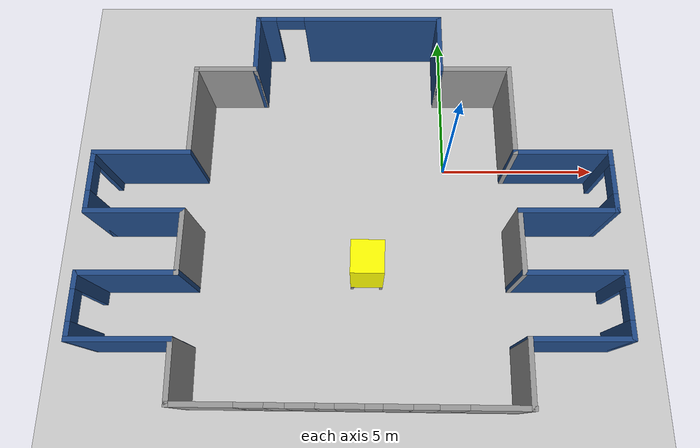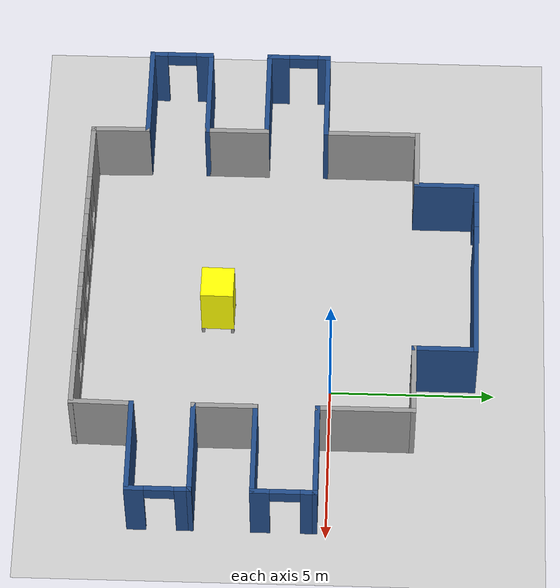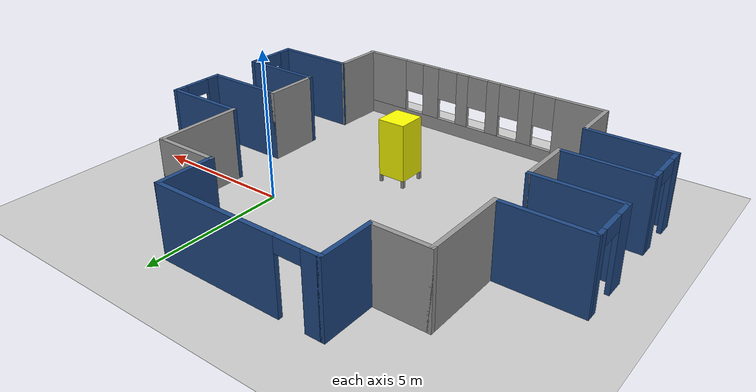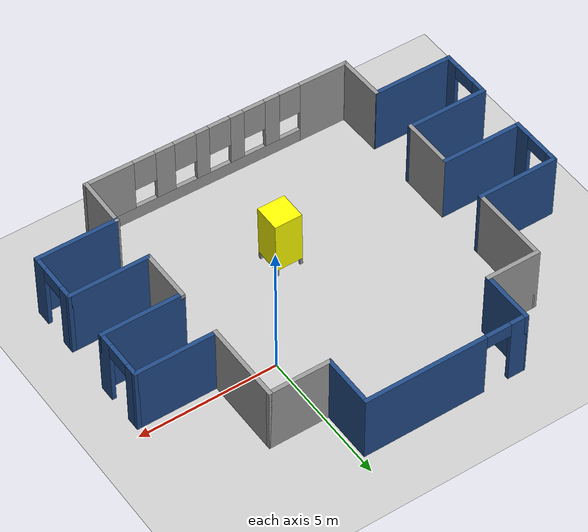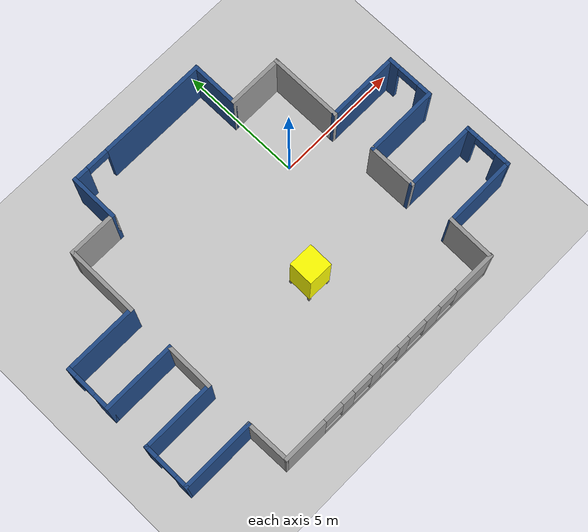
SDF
<sdf version="1.6">
 <world name="default">
  <model name="ground_plane">
   <static>1</static>
   <link name="link">
    <collision name="collision">
     <geometry><plane><normal>0 0 1</normal><size>100 100</size></plane></geometry>
     <surface>
      <contact><collide_bitmask>65535</collide_bitmask></contact>
      <friction><ode><mu>100</mu><mu2>50</mu2></ode></friction>
     </surface>
    </collision>
    <visual name="visual">
     <cast_shadows>0</cast_shadows>
     <geometry><plane><normal>0 0 1</normal><size>100 100</size></plane></geometry>
     <material>
      <script><uri>file://media/materials/scripts/gazebo.material</uri><name>Gazebo/Grey</name></script>
     </material>
    </visual>
   </link>
  </model>
  <model name="AmazonRoboticsFloor">
   <pose>-2.98765 -1.66162 0 0 -0 0</pose>
   <link name="Wall_1">
    <collision name="Wall_1_Collision">
     <geometry><box><size>3 0.15 2.5</size></box></geometry>
     <pose>0 0 1.25 0 -0 0</pose>
    </collision>
    <visual name="Wall_1_Visual">
     <pose>0 0 1.25 0 -0 0</pose>
     <geometry><box><size>3 0.15 2.5</size></box></geometry>
     <material>
      <script><uri>file://media/materials/scripts/gazebo.material</uri><name>Gazebo/Grey</name></script>
      <ambient>1 1 1 1</ambient>
     </material>
     <meta><layer>0</layer></meta>
    </visual>
    <pose>-4.92496 2.75442 0 0 -0 -1.5708</pose>
   </link>
   <link name="Wall_10">
    <pose>0.03254 -5.97119 0 0 -0 -0.011673</pose>
    <visual name="Wall_10_Visual_0">
     <pose>-4.02993 0 1.25 0 -0 0</pose>
     <geometry><box><size>1.8463 0.15 2.5</size></box></geometry>
     <material>
      <script><uri>file://media/materials/scripts/gazebo.material</uri><name>Gazebo/Grey</name></script>
      <ambient>1 1 1 1</ambient>
     </material>
     <meta><layer>0</layer></meta>
    </visual>
    <collision name="Wall_10_Collision_0">
     <geometry><box><size>1.8463 0.15 2.5</size></box></geometry>
     <pose>-4.02993 0 1.25 0 -0 0</pose>
    </collision>
    <visual name="Wall_10_Visual_1">
     <pose>0.923151 0 0.25 0 -0 0</pose>
     <geometry><box><size>8.05987 0.15 0.5</size></box></geometry>
     <material>
      <script><uri>file://media/materials/scripts/gazebo.material</uri><name>Gazebo/Grey</name></script>
      <ambient>1 1 1 1</ambient>
     </material>
     <meta><layer>0</layer></meta>
    </visual>
    <collision name="Wall_10_Collision_1">
     <geometry><box><size>8.05987 0.15 0.5</size></box></geometry>
     <pose>0.923151 0 0.25 0 -0 0</pose>
    </collision>
    <visual name="Wall_10_Visual_2">
     <pose>-2.02774 0 1.5 0 -0 0</pose>
     <geometry><box><size>0.558079 0.15 2</size></box></geometry>
     <material>
      <script><uri>file://media/materials/scripts/gazebo.material</uri><name>Gazebo/Grey</name></script>
      <ambient>1 1 1 1</ambient>
     </material>
     <meta><layer>0</layer></meta>
    </visual>
    <collision name="Wall_10_Collision_2">
     <geometry><box><size>0.558079 0.15 2</size></box></geometry>
     <pose>-2.02774 0 1.5 0 -0 0</pose>
    </collision>
    <visual name="Wall_10_Visual_3">
     <pose>-0.689635 0 1.5 0 -0 0</pose>
     <geometry><box><size>0.518135 0.15 2</size></box></geometry>
     <material>
      <script><uri>file://media/materials/scripts/gazebo.material</uri><name>Gazebo/Grey</name></script>
      <ambient>1 1 1 1</ambient>
     </material>
     <meta><layer>0</layer></meta>
    </visual>
    <collision name="Wall_10_Collision_3">
     <geometry><box><size>0.518135 0.15 2</size></box></geometry>
     <pose>-0.689635 0 1.5 0 -0 0</pose>
    </collision>
    <visual name="Wall_10_Visual_4">
     <pose>0.616096 0 1.5 0 -0 0</pose>
     <geometry><box><size>0.493327 0.15 2</size></box></geometry>
     <material>
      <script><uri>file://media/materials/scripts/gazebo.material</uri><name>Gazebo/Grey</name></script>
      <ambient>1 1 1 1</ambient>
     </material>
     <meta><layer>0</layer></meta>
    </visual>
    <collision name="Wall_10_Collision_4">
     <geometry><box><size>0.493327 0.15 2</size></box></geometry>
     <pose>0.616096 0 1.5 0 -0 0</pose>
    </collision>
    <visual name="Wall_10_Visual_5">
     <pose>2.01412 0 1.5 0 -0 0</pose>
     <geometry><box><size>0.702718 0.15 2</size></box></geometry>
     <material>
      <script><uri>file://media/materials/scripts/gazebo.material</uri><name>Gazebo/Grey</name></script>
      <ambient>1 1 1 1</ambient>
     </material>
     <meta><layer>0</layer></meta>
    </visual>
    <collision name="Wall_10_Collision_5">
     <geometry><box><size>0.702718 0.15 2</size></box></geometry>
     <pose>2.01412 0 1.5 0 -0 0</pose>
    </collision>
    <visual name="Wall_10_Visual_6">
     <pose>4.05928 0 1.5 0 -0 0</pose>
     <geometry><box><size>1.78761 0.15 2</size></box></geometry>
     <material>
      <script><uri>file://media/materials/scripts/gazebo.material</uri><name>Gazebo/Grey</name></script>
      <ambient>1 1 1 1</ambient>
     </material>
     <meta><layer>0</layer></meta>
    </visual>
    <collision name="Wall_10_Collision_6">
     <geometry><box><size>1.78761 0.15 2</size></box></geometry>
     <pose>4.05928 0 1.5 0 -0 0</pose>
    </collision>
    <visual name="Wall_10_Visual_7">
     <pose>-2.70678 0 1.9 0 -0 0</pose>
     <geometry><box><size>0.8 0.15 1.2</size></box></geometry>
     <material>
      <script><uri>file://media/materials/scripts/gazebo.material</uri><name>Gazebo/Grey</name></script>
      <ambient>1 1 1 1</ambient>
     </material>
     <meta><layer>0</layer></meta>
    </visual>
    <collision name="Wall_10_Collision_7">
     <geometry><box><size>0.8 0.15 1.2</size></box></geometry>
     <pose>-2.70678 0 1.9 0 -0 0</pose>
    </collision>
    <visual name="Wall_10_Visual_8">
     <pose>-1.3487 0 1.9 0 -0 0</pose>
     <geometry><box><size>0.8 0.15 1.2</size></box></geometry>
     <material>
      <script><uri>file://media/materials/scripts/gazebo.material</uri><name>Gazebo/Grey</name></script>
      <ambient>1 1 1 1</ambient>
     </material>
     <meta><layer>0</layer></meta>
    </visual>
    <collision name="Wall_10_Collision_8">
     <geometry><box><size>0.8 0.15 1.2</size></box></geometry>
     <pose>-1.3487 0 1.9 0 -0 0</pose>
    </collision>
    <visual name="Wall_10_Visual_9">
     <pose>-0.030567 0 1.9 0 -0 0</pose>
     <geometry><box><size>0.8 0.15 1.2</size></box></geometry>
     <material>
      <script><uri>file://media/materials/scripts/gazebo.material</uri><name>Gazebo/Grey</name></script>
      <ambient>1 1 1 1</ambient>
     </material>
     <meta><layer>0</layer></meta>
    </visual>
    <collision name="Wall_10_Collision_9">
     <geometry><box><size>0.8 0.15 1.2</size></box></geometry>
     <pose>-0.030567 0 1.9 0 -0 0</pose>
    </collision>
    <visual name="Wall_10_Visual_10">
     <pose>1.26276 0 1.9 0 -0 0</pose>
     <geometry><box><size>0.8 0.15 1.2</size></box></geometry>
     <material>
      <script><uri>file://media/materials/scripts/gazebo.material</uri><name>Gazebo/Grey</name></script>
      <ambient>1 1 1 1</ambient>
     </material>
     <meta><layer>0</layer></meta>
    </visual>
    <collision name="Wall_10_Collision_10">
     <geometry><box><size>0.8 0.15 1.2</size></box></geometry>
     <pose>1.26276 0 1.9 0 -0 0</pose>
    </collision>
    <visual name="Wall_10_Visual_11">
     <pose>2.76548 0 1.9 0 -0 0</pose>
     <geometry><box><size>0.8 0.15 1.2</size></box></geometry>
     <material>
      <script><uri>file://media/materials/scripts/gazebo.material</uri><name>Gazebo/Grey</name></script>
      <ambient>1 1 1 1</ambient>
     </material>
     <meta><layer>0</layer></meta>
    </visual>
    <collision name="Wall_10_Collision_11">
     <geometry><box><size>0.8 0.15 1.2</size></box></geometry>
     <pose>2.76548 0 1.9 0 -0 0</pose>
    </collision>
   </link>
   <link name="Wall_12">
    <collision name="Wall_12_Collision">
     <geometry><box><size>3 0.15 2.5</size></box></geometry>
     <pose>0 0 1.25 0 -0 0</pose>
    </collision>
    <visual name="Wall_12_Visual">
     <pose>0 0 1.25 0 -0 0</pose>
     <geometry><box><size>3 0.15 2.5</size></box></geometry>
     <material>
      <script><uri>file://media/materials/scripts/gazebo.material</uri><name>Gazebo/Grey</name></script>
      <ambient>0.12549 0.290196 0.529412 1</ambient>
     </material>
     <meta><layer>0</layer></meta>
    </visual>
    <pose>6.35004 -4.22058 0 0 -0 0</pose>
   </link>
   <link name="Wall_13">
    <pose>7.77504 -3.29558 0 0 -0 1.5708</pose>
    <visual name="Wall_13_Visual_0">
     <pose>-0.706177 0 1.25 0 -0 0</pose>
     <geometry><box><size>0.587646 0.15 2.5</size></box></geometry>
     <material>
      <script><uri>file://media/materials/scripts/gazebo.material</uri><name>Gazebo/Grey</name></script>
      <ambient>0.12549 0.290196 0.529412 1</ambient>
     </material>
     <meta><layer>0</layer></meta>
    </visual>
    <collision name="Wall_13_Collision_0">
     <geometry><box><size>0.587646 0.15 2.5</size></box></geometry>
     <pose>-0.706177 0 1.25 0 -0 0</pose>
    </collision>
    <visual name="Wall_13_Visual_1">
     <pose>0.743823 0 1.25 0 -0 0</pose>
     <geometry><box><size>0.512354 0.15 2.5</size></box></geometry>
     <material>
      <script><uri>file://media/materials/scripts/gazebo.material</uri><name>Gazebo/Grey</name></script>
      <ambient>0.12549 0.290196 0.529412 1</ambient>
     </material>
     <meta><layer>0</layer></meta>
    </visual>
    <collision name="Wall_13_Collision_1">
     <geometry><box><size>0.512354 0.15 2.5</size></box></geometry>
     <pose>0.743823 0 1.25 0 -0 0</pose>
    </collision>
    <visual name="Wall_13_Visual_2">
     <pose>0.037646 0 2.25 0 -0 0</pose>
     <geometry><box><size>0.9 0.15 0.5</size></box></geometry>
     <material>
      <script><uri>file://media/materials/scripts/gazebo.material</uri><name>Gazebo/Grey</name></script>
      <ambient>0.12549 0.290196 0.529412 1</ambient>
     </material>
     <meta><layer>0</layer></meta>
    </visual>
    <collision name="Wall_13_Collision_2">
     <geometry><box><size>0.9 0.15 0.5</size></box></geometry>
     <pose>0.037646 0 2.25 0 -0 0</pose>
    </collision>
   </link>
   <link name="Wall_14">
    <collision name="Wall_14_Collision">
     <geometry><box><size>3 0.15 2.5</size></box></geometry>
     <pose>0 0 1.25 0 -0 0</pose>
    </collision>
    <visual name="Wall_14_Visual">
     <pose>0 0 1.25 0 -0 0</pose>
     <geometry><box><size>3 0.15 2.5</size></box></geometry>
     <material>
      <script><uri>file://media/materials/scripts/gazebo.material</uri><name>Gazebo/Grey</name></script>
      <ambient>0.12549 0.290196 0.529412 1</ambient>
     </material>
     <meta><layer>0</layer></meta>
    </visual>
    <pose>6.35004 -2.37058 0 0 -0 3.14159</pose>
   </link>
   <link name="Wall_15">
    <collision name="Wall_15_Collision">
     <geometry><box><size>2 0.15 2.5</size></box></geometry>
     <pose>0 0 1.25 0 -0 0</pose>
    </collision>
    <visual name="Wall_15_Visual">
     <pose>0 0 1.25 0 -0 0</pose>
     <geometry><box><size>2 0.15 2.5</size></box></geometry>
     <material>
      <script><uri>file://media/materials/scripts/gazebo.material</uri><name>Gazebo/Grey</name></script>
      <ambient>1 1 1 1</ambient>
     </material>
     <meta><layer>0</layer></meta>
    </visual>
    <pose>4.92504 -1.44558 0 0 -0 1.5708</pose>
   </link>
   <link name="Wall_17">
    <collision name="Wall_17_Collision">
     <geometry><box><size>3 0.15 2.5</size></box></geometry>
     <pose>0 0 1.25 0 -0 0</pose>
    </collision>
    <visual name="Wall_17_Visual">
     <pose>0 0 1.25 0 -0 0</pose>
     <geometry><box><size>3 0.15 2.5</size></box></geometry>
     <material>
      <script><uri>file://media/materials/scripts/gazebo.material</uri><name>Gazebo/Grey</name></script>
      <ambient>0.12549 0.290196 0.529412 1</ambient>
     </material>
     <meta><layer>0</layer></meta>
    </visual>
    <pose>6.35004 -0.52058 0 0 -0 0</pose>
   </link>
   <link name="Wall_18">
    <pose>7.77504 0.40442 0 0 -0 1.5708</pose>
    <visual name="Wall_18_Visual_0">
     <pose>-0.704677 0 1.25 0 -0 0</pose>
     <geometry><box><size>0.590647 0.15 2.5</size></box></geometry>
     <material>
      <script><uri>file://media/materials/scripts/gazebo.material</uri><name>Gazebo/Grey</name></script>
      <ambient>0.12549 0.290196 0.529412 1</ambient>
     </material>
     <meta><layer>0</layer></meta>
    </visual>
    <collision name="Wall_18_Collision_0">
     <geometry><box><size>0.590647 0.15 2.5</size></box></geometry>
     <pose>-0.704677 0 1.25 0 -0 0</pose>
    </collision>
    <visual name="Wall_18_Visual_1">
     <pose>0.745323 0 1.25 0 -0 0</pose>
     <geometry><box><size>0.509353 0.15 2.5</size></box></geometry>
     <material>
      <script><uri>file://media/materials/scripts/gazebo.material</uri><name>Gazebo/Grey</name></script>
      <ambient>0.12549 0.290196 0.529412 1</ambient>
     </material>
     <meta><layer>0</layer></meta>
    </visual>
    <collision name="Wall_18_Collision_1">
     <geometry><box><size>0.509353 0.15 2.5</size></box></geometry>
     <pose>0.745323 0 1.25 0 -0 0</pose>
    </collision>
    <visual name="Wall_18_Visual_2">
     <pose>0.040647 0 2.25 0 -0 0</pose>
     <geometry><box><size>0.9 0.15 0.5</size></box></geometry>
     <material>
      <script><uri>file://media/materials/scripts/gazebo.material</uri><name>Gazebo/Grey</name></script>
      <ambient>0.12549 0.290196 0.529412 1</ambient>
     </material>
     <meta><layer>0</layer></meta>
    </visual>
    <collision name="Wall_18_Collision_2">
     <geometry><box><size>0.9 0.15 0.5</size></box></geometry>
     <pose>0.040647 0 2.25 0 -0 0</pose>
    </collision>
   </link>
   <link name="Wall_19">
    <collision name="Wall_19_Collision">
     <geometry><box><size>3 0.15 2.5</size></box></geometry>
     <pose>0 0 1.25 0 -0 0</pose>
    </collision>
    <visual name="Wall_19_Visual">
     <pose>0 0 1.25 0 -0 0</pose>
     <geometry><box><size>3 0.15 2.5</size></box></geometry>
     <material>
      <script><uri>file://media/materials/scripts/gazebo.material</uri><name>Gazebo/Grey</name></script>
      <ambient>0.12549 0.290196 0.529412 1</ambient>
     </material>
     <meta><layer>0</layer></meta>
    </visual>
    <pose>6.35004 1.32942 0 0 -0 3.14159</pose>
   </link>
   <link name="Wall_2">
    <collision name="Wall_2_Collision">
     <geometry><box><size>3 0.15 2.5</size></box></geometry>
     <pose>0 0 1.25 0 -0 0</pose>
    </collision>
    <visual name="Wall_2_Visual">
     <pose>0 0 1.25 0 -0 0</pose>
     <geometry><box><size>3 0.15 2.5</size></box></geometry>
     <material>
      <script><uri>file://media/materials/scripts/gazebo.material</uri><name>Gazebo/Grey</name></script>
      <ambient>0.12549 0.290196 0.529412 1</ambient>
     </material>
     <meta><layer>0</layer></meta>
    </visual>
    <pose>-6.34996 1.32942 0 0 -0 3.14159</pose>
   </link>
   <link name="Wall_20">
    <collision name="Wall_20_Collision">
     <geometry><box><size>3 0.15 2.5</size></box></geometry>
     <pose>0 0 1.25 0 -0 0</pose>
    </collision>
    <visual name="Wall_20_Visual">
     <pose>0 0 1.25 0 -0 0</pose>
     <geometry><box><size>3 0.15 2.5</size></box></geometry>
     <material>
      <script><uri>file://media/materials/scripts/gazebo.material</uri><name>Gazebo/Grey</name></script>
      <ambient>1 1 1 1</ambient>
     </material>
     <meta><layer>0</layer></meta>
    </visual>
    <pose>4.92504 2.75442 0 0 -0 1.5708</pose>
   </link>
   <link name="Wall_22">
    <collision name="Wall_22_Collision">
     <geometry><box><size>2 0.15 2.5</size></box></geometry>
     <pose>0 0 1.25 0 -0 0</pose>
    </collision>
    <visual name="Wall_22_Visual">
     <pose>0 0 1.25 0 -0 0</pose>
     <geometry><box><size>2 0.15 2.5</size></box></geometry>
     <material>
      <script><uri>file://media/materials/scripts/gazebo.material</uri><name>Gazebo/Grey</name></script>
      <ambient>1 1 1 1</ambient>
     </material>
     <meta><layer>0</layer></meta>
    </visual>
    <pose>-3.99996 4.17942 0 0 -0 0</pose>
   </link>
   <link name="Wall_24">
    <collision name="Wall_24_Collision">
     <geometry><box><size>2 0.15 2.5</size></box></geometry>
     <pose>0 0 1.25 0 -0 0</pose>
    </collision>
    <visual name="Wall_24_Visual">
     <pose>0 0 1.25 0 -0 0</pose>
     <geometry><box><size>2 0.15 2.5</size></box></geometry>
     <material>
      <script><uri>file://media/materials/scripts/gazebo.material</uri><name>Gazebo/Grey</name></script>
      <ambient>0.12549 0.290196 0.529412 1</ambient>
     </material>
     <meta><layer>0</layer></meta>
    </visual>
    <pose>-3.07496 5.10442 0 0 -0 1.5708</pose>
   </link>
   <link name="Wall_25">
    <pose>-0.149958 6.02942 0 0 -0 0</pose>
    <visual name="Wall_25_Visual_0">
     <pose>-2.67362 0 1.25 0 -0 0</pose>
     <geometry><box><size>0.652756 0.15 2.5</size></box></geometry>
     <material>
      <script><uri>file://media/materials/scripts/gazebo.material</uri><name>Gazebo/Grey</name></script>
      <ambient>0.12549 0.290196 0.529412 1</ambient>
     </material>
     <meta><layer>0</layer></meta>
    </visual>
    <collision name="Wall_25_Collision_0">
     <geometry><box><size>0.652756 0.15 2.5</size></box></geometry>
     <pose>-2.67362 0 1.25 0 -0 0</pose>
    </collision>
    <visual name="Wall_25_Visual_1">
     <pose>0.776378 0 1.25 0 -0 0</pose>
     <geometry><box><size>4.44724 0.15 2.5</size></box></geometry>
     <material>
      <script><uri>file://media/materials/scripts/gazebo.material</uri><name>Gazebo/Grey</name></script>
      <ambient>0.12549 0.290196 0.529412 1</ambient>
     </material>
     <meta><layer>0</layer></meta>
    </visual>
    <collision name="Wall_25_Collision_1">
     <geometry><box><size>4.44724 0.15 2.5</size></box></geometry>
     <pose>0.776378 0 1.25 0 -0 0</pose>
    </collision>
    <visual name="Wall_25_Visual_2">
     <pose>-1.89724 0 2.25 0 -0 0</pose>
     <geometry><box><size>0.9 0.15 0.5</size></box></geometry>
     <material>
      <script><uri>file://media/materials/scripts/gazebo.material</uri><name>Gazebo/Grey</name></script>
      <ambient>0.12549 0.290196 0.529412 1</ambient>
     </material>
     <meta><layer>0</layer></meta>
    </visual>
    <collision name="Wall_25_Collision_2">
     <geometry><box><size>0.9 0.15 0.5</size></box></geometry>
     <pose>-1.89724 0 2.25 0 -0 0</pose>
    </collision>
   </link>
   <link name="Wall_29">
    <collision name="Wall_29_Collision">
     <geometry><box><size>2 0.15 2.5</size></box></geometry>
     <pose>0 0 1.25 0 -0 0</pose>
    </collision>
    <visual name="Wall_29_Visual">
     <pose>0 0 1.25 0 -0 0</pose>
     <geometry><box><size>2 0.15 2.5</size></box></geometry>
     <material>
      <script><uri>file://media/materials/scripts/gazebo.material</uri><name>Gazebo/Grey</name></script>
      <ambient>0.12549 0.290196 0.529412 1</ambient>
     </material>
     <meta><layer>0</layer></meta>
    </visual>
    <pose>2.77504 5.10442 0 0 -0 -1.5708</pose>
   </link>
   <link name="Wall_3">
    <pose>-7.77496 0.40442 0 0 -0 -1.5708</pose>
    <visual name="Wall_3_Visual_0">
     <pose>-0.798223 0 1.25 0 -0 0</pose>
     <geometry><box><size>0.403554 0.15 2.5</size></box></geometry>
     <material>
      <script><uri>file://media/materials/scripts/gazebo.material</uri><name>Gazebo/Grey</name></script>
      <ambient>0.12549 0.290196 0.529412 1</ambient>
     </material>
     <meta><layer>0</layer></meta>
    </visual>
    <collision name="Wall_3_Collision_0">
     <geometry><box><size>0.403554 0.15 2.5</size></box></geometry>
     <pose>-0.798223 0 1.25 0 -0 0</pose>
    </collision>
    <visual name="Wall_3_Visual_1">
     <pose>0.651777 0 1.25 0 -0 0</pose>
     <geometry><box><size>0.696446 0.15 2.5</size></box></geometry>
     <material>
      <script><uri>file://media/materials/scripts/gazebo.material</uri><name>Gazebo/Grey</name></script>
      <ambient>0.12549 0.290196 0.529412 1</ambient>
     </material>
     <meta><layer>0</layer></meta>
    </visual>
    <collision name="Wall_3_Collision_1">
     <geometry><box><size>0.696446 0.15 2.5</size></box></geometry>
     <pose>0.651777 0 1.25 0 -0 0</pose>
    </collision>
    <visual name="Wall_3_Visual_2">
     <pose>-0.146446 0 2.25 0 -0 0</pose>
     <geometry><box><size>0.9 0.15 0.5</size></box></geometry>
     <material>
      <script><uri>file://media/materials/scripts/gazebo.material</uri><name>Gazebo/Grey</name></script>
      <ambient>0.12549 0.290196 0.529412 1</ambient>
     </material>
     <meta><layer>0</layer></meta>
    </visual>
    <collision name="Wall_3_Collision_2">
     <geometry><box><size>0.9 0.15 0.5</size></box></geometry>
     <pose>-0.146446 0 2.25 0 -0 0</pose>
    </collision>
   </link>
   <link name="Wall_30">
    <collision name="Wall_30_Collision">
     <geometry><box><size>2.3 0.15 2.5</size></box></geometry>
     <pose>0 0 1.25 0 -0 0</pose>
    </collision>
    <visual name="Wall_30_Visual">
     <pose>0 0 1.25 0 -0 0</pose>
     <geometry><box><size>2.3 0.15 2.5</size></box></geometry>
     <material>
      <script><uri>file://media/materials/scripts/gazebo.material</uri><name>Gazebo/Grey</name></script>
      <ambient>1 1 1 1</ambient>
     </material>
     <meta><layer>0</layer></meta>
    </visual>
    <pose>3.85004 4.17942 0 0 -0 0</pose>
   </link>
   <link name="Wall_34">
    <collision name="Wall_34_Collision">
     <geometry><box><size>1.82164 0.15 2.5</size></box></geometry>
     <pose>0 0 1.25 0 -0 0</pose>
    </collision>
    <visual name="Wall_34_Visual">
     <pose>0 0 1.25 0 -0 0</pose>
     <geometry><box><size>1.82164 0.15 2.5</size></box></geometry>
     <material>
      <script><uri>file://media/materials/scripts/gazebo.material</uri><name>Gazebo/Grey</name></script>
      <ambient>1 1 1 1</ambient>
     </material>
     <meta><layer>0</layer></meta>
    </visual>
    <pose>-4.88509 -5.07896 0 0 -0 -1.54693</pose>
   </link>
   <link name="Wall_35">
    <collision name="Wall_35_Collision">
     <geometry><box><size>0.15 0.15 2.5</size></box></geometry>
     <pose>0 0 1.25 0 -0 0</pose>
    </collision>
    <visual name="Wall_35_Visual">
     <pose>0 0 1.25 0 -0 0</pose>
     <geometry><box><size>0.15 0.15 2.5</size></box></geometry>
     <material>
      <script><uri>file://media/materials/scripts/gazebo.material</uri><name>Gazebo/Grey</name></script>
      <ambient>1 1 1 1</ambient>
     </material>
     <meta><layer>0</layer></meta>
    </visual>
    <pose>-4.86515 -5.91425 0 0 -0 0</pose>
   </link>
   <link name="Wall_37">
    <collision name="Wall_37_Collision">
     <geometry><box><size>1.95761 0.15 2.5</size></box></geometry>
     <pose>0 0 1.25 0 -0 0</pose>
    </collision>
    <visual name="Wall_37_Visual">
     <pose>0 0 1.25 0 -0 0</pose>
     <geometry><box><size>1.95761 0.15 2.5</size></box></geometry>
     <material>
      <script><uri>file://media/materials/scripts/gazebo.material</uri><name>Gazebo/Grey</name></script>
      <ambient>1 1 1 1</ambient>
     </material>
     <meta><layer>0</layer></meta>
    </visual>
    <pose>4.9077 -5.12436 0 0 -0 1.55161</pose>
   </link>
   <link name="Wall_4">
    <collision name="Wall_4_Collision">
     <geometry><box><size>3 0.15 2.5</size></box></geometry>
     <pose>0 0 1.25 0 -0 0</pose>
    </collision>
    <visual name="Wall_4_Visual">
     <pose>0 0 1.25 0 -0 0</pose>
     <geometry><box><size>3 0.15 2.5</size></box></geometry>
     <material>
      <script><uri>file://media/materials/scripts/gazebo.material</uri><name>Gazebo/Grey</name></script>
      <ambient>0.12549 0.290196 0.529412 1</ambient>
     </material>
     <meta><layer>0</layer></meta>
    </visual>
    <pose>-6.34996 -0.52058 0 0 -0 0</pose>
   </link>
   <link name="Wall_5">
    <collision name="Wall_5_Collision">
     <geometry><box><size>2 0.15 2.5</size></box></geometry>
     <pose>0 0 1.25 0 -0 0</pose>
    </collision>
    <visual name="Wall_5_Visual">
     <pose>0 0 1.25 0 -0 0</pose>
     <geometry><box><size>2 0.15 2.5</size></box></geometry>
     <material>
      <script><uri>file://media/materials/scripts/gazebo.material</uri><name>Gazebo/Grey</name></script>
      <ambient>1 1 1 1</ambient>
     </material>
     <meta><layer>0</layer></meta>
    </visual>
    <pose>-4.92496 -1.44558 0 0 -0 -1.5708</pose>
   </link>
   <link name="Wall_6">
    <collision name="Wall_6_Collision">
     <geometry><box><size>3 0.15 2.5</size></box></geometry>
     <pose>0 0 1.25 0 -0 0</pose>
    </collision>
    <visual name="Wall_6_Visual">
     <pose>0 0 1.25 0 -0 0</pose>
     <geometry><box><size>3 0.15 2.5</size></box></geometry>
     <material>
      <script><uri>file://media/materials/scripts/gazebo.material</uri><name>Gazebo/Grey</name></script>
      <ambient>0.12549 0.290196 0.529412 1</ambient>
     </material>
     <meta><layer>0</layer></meta>
    </visual>
    <pose>-6.34996 -2.37058 0 0 -0 3.14159</pose>
   </link>
   <link name="Wall_7">
    <pose>-7.77496 -3.29558 0 0 -0 -1.5708</pose>
    <visual name="Wall_7_Visual_0">
     <pose>-0.72619 0 1.25 0 -0 0</pose>
     <geometry><box><size>0.54762 0.15 2.5</size></box></geometry>
     <material>
      <script><uri>file://media/materials/scripts/gazebo.material</uri><name>Gazebo/Grey</name></script>
      <ambient>0.12549 0.290196 0.529412 1</ambient>
     </material>
     <meta><layer>0</layer></meta>
    </visual>
    <collision name="Wall_7_Collision_0">
     <geometry><box><size>0.54762 0.15 2.5</size></box></geometry>
     <pose>-0.72619 0 1.25 0 -0 0</pose>
    </collision>
    <visual name="Wall_7_Visual_1">
     <pose>0.72381 0 1.25 0 -0 0</pose>
     <geometry><box><size>0.55238 0.15 2.5</size></box></geometry>
     <material>
      <script><uri>file://media/materials/scripts/gazebo.material</uri><name>Gazebo/Grey</name></script>
      <ambient>0.12549 0.290196 0.529412 1</ambient>
     </material>
     <meta><layer>0</layer></meta>
    </visual>
    <collision name="Wall_7_Collision_1">
     <geometry><box><size>0.55238 0.15 2.5</size></box></geometry>
     <pose>0.72381 0 1.25 0 -0 0</pose>
    </collision>
    <visual name="Wall_7_Visual_2">
     <pose>-0.00238 0 2.25 0 -0 0</pose>
     <geometry><box><size>0.9 0.15 0.5</size></box></geometry>
     <material>
      <script><uri>file://media/materials/scripts/gazebo.material</uri><name>Gazebo/Grey</name></script>
      <ambient>0.12549 0.290196 0.529412 1</ambient>
     </material>
     <meta><layer>0</layer></meta>
    </visual>
    <collision name="Wall_7_Collision_2">
     <geometry><box><size>0.9 0.15 0.5</size></box></geometry>
     <pose>-0.00238 0 2.25 0 -0 0</pose>
    </collision>
   </link>
   <link name="Wall_8">
    <collision name="Wall_8_Collision">
     <geometry><box><size>3 0.15 2.5</size></box></geometry>
     <pose>0 0 1.25 0 -0 0</pose>
    </collision>
    <visual name="Wall_8_Visual">
     <pose>0 0 1.25 0 -0 0</pose>
     <geometry><box><size>3 0.15 2.5</size></box></geometry>
     <material>
      <script><uri>file://media/materials/scripts/gazebo.material</uri><name>Gazebo/Grey</name></script>
      <ambient>0.12549 0.290196 0.529412 1</ambient>
     </material>
     <meta><layer>0</layer></meta>
    </visual>
    <pose>-6.34996 -4.22216 0 0 -0 -0.001109</pose>
   </link>
   <static>1</static>
  </model>
  <model name="StoragePod_clone_2">
   <link name="link_2">
    <inertial>
     <mass>1</mass>
     <inertia>
      <ixx>0.166667</ixx>
      <ixy>0</ixy>
      <ixz>0</ixz>
      <iyy>0.166667</iyy>
      <iyz>0</iyz>
      <izz>0.166667</izz>
     </inertia>
    </inertial>
    <pose>-0.45 -0.45 -0.237 0 -0 0</pose>
    <visual name="visual">
     <geometry><box><size>0.1 0.1 0.25</size></box></geometry>
     <material>
      <lighting>1</lighting>
      <script><uri>file://media/materials/scripts/gazebo.material</uri><name>Gazebo/Grey</name></script>
      <shader type="pixel"><normal_map>__default__</normal_map></shader>
      <ambient>0.3 0.3 0.3 1</ambient>
      <diffuse>0.7 0.7 0.7 1</diffuse>
      <specular>0.01 0.01 0.01 1</specular>
      <emissive>0 0 0 1</emissive>
     </material>
    </visual>
    <collision name="collision">
     <geometry><box><size>0.1 0.1 0.25</size></box></geometry>
     <surface>
      <friction>
       <ode><mu>1</mu><mu2>1</mu2><fdir1>0 0 0</fdir1><slip1>0</slip1><slip2>0</slip2></ode>
       <torsional>
        <coefficient>1</coefficient>
        <patch_radius>0</patch_radius>
        <surface_radius>0</surface_radius>
        <use_patch_radius>1</use_patch_radius>
        <ode><slip>0</slip></ode>
       </torsional>
      </friction>
      <bounce><restitution_coefficient>0</restitution_coefficient><threshold>1e+06</threshold></bounce>
      <contact>
       <collide_without_contact>0</collide_without_contact>
       <collide_without_contact_bitmask>1</collide_without_contact_bitmask>
       <collide_bitmask>1</collide_bitmask>
       <ode>
        <soft_cfm>0</soft_cfm>
        <soft_erp>0.2</soft_erp>
        <kp>1e+13</kp>
        <kd>1</kd>
        <max_vel>0.01</max_vel>
        <min_depth>0</min_depth>
       </ode>
       <bullet>
        <split_impulse>1</split_impulse>
        <split_impulse_penetration_threshold>-0.01</split_impulse_penetration_threshold>
        <soft_cfm>0</soft_cfm>
        <soft_erp>0.2</soft_erp>
        <kp>1e+13</kp>
        <kd>1</kd>
       </bullet>
      </contact>
     </surface>
    </collision>
   </link>
   <link name="link_2_clone">
    <inertial>
     <mass>1</mass>
     <inertia>
      <ixx>0.166667</ixx>
      <ixy>0</ixy>
      <ixz>0</ixz>
      <iyy>0.166667</iyy>
      <iyz>0</iyz>
      <izz>0.166667</izz>
     </inertia>
    </inertial>
    <pose>0.45 0.45 -0.222 0 -0 0</pose>
    <visual name="visual">
     <geometry><box><size>0.1 0.1 0.25</size></box></geometry>
     <material>
      <lighting>1</lighting>
      <script><uri>file://media/materials/scripts/gazebo.material</uri><name>Gazebo/Grey</name></script>
      <shader type="pixel"><normal_map>__default__</normal_map></shader>
      <ambient>0.3 0.3 0.3 1</ambient>
      <diffuse>0.7 0.7 0.7 1</diffuse>
      <specular>0.01 0.01 0.01 1</specular>
      <emissive>0 0 0 1</emissive>
     </material>
    </visual>
    <collision name="collision">
     <geometry><box><size>0.1 0.1 0.25</size></box></geometry>
     <surface>
      <friction>
       <ode><mu>1</mu><mu2>1</mu2><fdir1>0 0 0</fdir1><slip1>0</slip1><slip2>0</slip2></ode>
       <torsional>
        <coefficient>1</coefficient>
        <patch_radius>0</patch_radius>
        <surface_radius>0</surface_radius>
        <use_patch_radius>1</use_patch_radius>
        <ode><slip>0</slip></ode>
       </torsional>
      </friction>
      <bounce><restitution_coefficient>0</restitution_coefficient><threshold>1e+06</threshold></bounce>
      <contact>
       <collide_without_contact>0</collide_without_contact>
       <collide_without_contact_bitmask>1</collide_without_contact_bitmask>
       <collide_bitmask>1</collide_bitmask>
       <ode>
        <soft_cfm>0</soft_cfm>
        <soft_erp>0.2</soft_erp>
        <kp>1e+13</kp>
        <kd>1</kd>
        <max_vel>0.01</max_vel>
        <min_depth>0</min_depth>
       </ode>
       <bullet>
        <split_impulse>1</split_impulse>
        <split_impulse_penetration_threshold>-0.01</split_impulse_penetration_threshold>
        <soft_cfm>0</soft_cfm>
        <soft_erp>0.2</soft_erp>
        <kp>1e+13</kp>
        <kd>1</kd>
       </bullet>
      </contact>
     </surface>
    </collision>
   </link>
   <link name="link_2_clone_0">
    <inertial>
     <mass>1</mass>
     <inertia>
      <ixx>0.166667</ixx>
      <ixy>0</ixy>
      <ixz>0</ixz>
      <iyy>0.166667</iyy>
      <iyz>0</iyz>
      <izz>0.166667</izz>
     </inertia>
    </inertial>
    <pose>0.45 -0.45 -0.222 0 -0 0</pose>
    <visual name="visual">
     <geometry><box><size>0.1 0.1 0.25</size></box></geometry>
     <material>
      <lighting>1</lighting>
      <script><uri>file://media/materials/scripts/gazebo.material</uri><name>Gazebo/Grey</name></script>
      <shader type="pixel"><normal_map>__default__</normal_map></shader>
      <ambient>0.3 0.3 0.3 1</ambient>
      <diffuse>0.7 0.7 0.7 1</diffuse>
      <specular>0.01 0.01 0.01 1</specular>
      <emissive>0 0 0 1</emissive>
     </material>
    </visual>
    <collision name="collision">
     <geometry><box><size>0.1 0.1 0.25</size></box></geometry>
     <surface>
      <friction>
       <ode><mu>1</mu><mu2>1</mu2><fdir1>0 0 0</fdir1><slip1>0</slip1><slip2>0</slip2></ode>
       <torsional>
        <coefficient>1</coefficient>
        <patch_radius>0</patch_radius>
        <surface_radius>0</surface_radius>
        <use_patch_radius>1</use_patch_radius>
        <ode><slip>0</slip></ode>
       </torsional>
      </friction>
      <bounce><restitution_coefficient>0</restitution_coefficient><threshold>1e+06</threshold></bounce>
      <contact>
       <collide_without_contact>0</collide_without_contact>
       <collide_without_contact_bitmask>1</collide_without_contact_bitmask>
       <collide_bitmask>1</collide_bitmask>
       <ode>
        <soft_cfm>0</soft_cfm>
        <soft_erp>0.2</soft_erp>
        <kp>1e+13</kp>
        <kd>1</kd>
        <max_vel>0.01</max_vel>
        <min_depth>0</min_depth>
       </ode>
       <bullet>
        <split_impulse>1</split_impulse>
        <split_impulse_penetration_threshold>-0.01</split_impulse_penetration_threshold>
        <soft_cfm>0</soft_cfm>
        <soft_erp>0.2</soft_erp>
        <kp>1e+13</kp>
        <kd>1</kd>
       </bullet>
      </contact>
     </surface>
    </collision>
   </link>
   <link name="link_2_clone_1">
    <inertial>
     <mass>1</mass>
     <inertia>
      <ixx>0.166667</ixx>
      <ixy>0</ixy>
      <ixz>0</ixz>
      <iyy>0.166667</iyy>
      <iyz>0</iyz>
      <izz>0.166667</izz>
     </inertia>
    </inertial>
    <pose>-0.45 0.45 -0.222 0 -0 0</pose>
    <visual name="visual">
     <geometry><box><size>0.1 0.1 0.25</size></box></geometry>
     <material>
      <lighting>1</lighting>
      <script><uri>file://media/materials/scripts/gazebo.material</uri><name>Gazebo/Grey</name></script>
      <shader type="pixel"><normal_map>__default__</normal_map></shader>
      <ambient>0.3 0.3 0.3 1</ambient>
      <diffuse>0.7 0.7 0.7 1</diffuse>
      <specular>0.01 0.01 0.01 1</specular>
      <emissive>0 0 0 1</emissive>
     </material>
    </visual>
    <collision name="collision">
     <geometry><box><size>0.1 0.1 0.25</size></box></geometry>
     <surface>
      <friction>
       <ode><mu>1</mu><mu2>1</mu2><fdir1>0 0 0</fdir1><slip1>0</slip1><slip2>0</slip2></ode>
       <torsional>
        <coefficient>1</coefficient>
        <patch_radius>0</patch_radius>
        <surface_radius>0</surface_radius>
        <use_patch_radius>1</use_patch_radius>
        <ode><slip>0</slip></ode>
       </torsional>
      </friction>
      <bounce><restitution_coefficient>0</restitution_coefficient><threshold>1e+06</threshold></bounce>
      <contact>
       <collide_without_contact>0</collide_without_contact>
       <collide_without_contact_bitmask>1</collide_without_contact_bitmask>
       <collide_bitmask>1</collide_bitmask>
       <ode>
        <soft_cfm>0</soft_cfm>
        <soft_erp>0.2</soft_erp>
        <kp>1e+13</kp>
        <kd>1</kd>
        <max_vel>0.01</max_vel>
        <min_depth>0</min_depth>
       </ode>
       <bullet>
        <split_impulse>1</split_impulse>
        <split_impulse_penetration_threshold>-0.01</split_impulse_penetration_threshold>
        <soft_cfm>0</soft_cfm>
        <soft_erp>0.2</soft_erp>
        <kp>1e+13</kp>
        <kd>1</kd>
       </bullet>
      </contact>
     </surface>
    </collision>
   </link>
   <link name="link_3">
    <inertial>
     <mass>1</mass>
     <inertia>
      <ixx>0.166667</ixx>
      <ixy>0</ixy>
      <ixz>0</ixz>
      <iyy>0.166667</iyy>
      <iyz>0</iyz>
      <izz>0.166667</izz>
     </inertia>
    </inertial>
    <pose>0 0 0.903 0 -0 0</pose>
    <visual name="visual">
     <geometry><box><size>1 1 2</size></box></geometry>
     <material>
      <lighting>1</lighting>
      <script><uri>file://media/materials/scripts/gazebo.material</uri><name>Gazebo/Grey</name></script>
      <shader type="pixel"><normal_map>__default__</normal_map></shader>
      <ambient>1 1 0 1</ambient>
      <diffuse>1 1 0 1</diffuse>
      <specular>0.01 0.01 0.01 1</specular>
      <emissive>0 0 0 1</emissive>
     </material>
    </visual>
    <collision name="collision">
     <geometry><box><size>1 1 2</size></box></geometry>
     <surface>
      <friction>
       <ode><mu>1</mu><mu2>1</mu2><fdir1>0 0 0</fdir1><slip1>0</slip1><slip2>0</slip2></ode>
       <torsional>
        <coefficient>1</coefficient>
        <patch_radius>0</patch_radius>
        <surface_radius>0</surface_radius>
        <use_patch_radius>1</use_patch_radius>
        <ode><slip>0</slip></ode>
       </torsional>
      </friction>
      <bounce><restitution_coefficient>0</restitution_coefficient><threshold>1e+06</threshold></bounce>
      <contact>
       <collide_without_contact>0</collide_without_contact>
       <collide_without_contact_bitmask>1</collide_without_contact_bitmask>
       <collide_bitmask>1</collide_bitmask>
       <ode>
        <soft_cfm>0</soft_cfm>
        <soft_erp>0.2</soft_erp>
        <kp>1e+13</kp>
        <kd>1</kd>
        <max_vel>0.01</max_vel>
        <min_depth>0</min_depth>
       </ode>
       <bullet>
        <split_impulse>1</split_impulse>
        <split_impulse_penetration_threshold>-0.01</split_impulse_penetration_threshold>
        <soft_cfm>0</soft_cfm>
        <soft_erp>0.2</soft_erp>
        <kp>1e+13</kp>
        <kd>1</kd>
       </bullet>
      </contact>
     </surface>
    </collision>
   </link>
   <joint name="link_3_JOINT_0" type="fixed">
    <parent>link_3</parent>
    <child>link_2_clone_0</child>
    <physics>
     <ode><limit><cfm>0</cfm><erp>0.2</erp></limit><suspension><cfm>0</cfm><erp>0.2</erp></suspension></ode>
    </physics>
   </joint>
   <joint name="link_3_JOINT_1" type="fixed">
    <parent>link_3</parent>
    <child>link_2</child>
    <physics>
     <ode><limit><cfm>0</cfm><erp>0.2</erp></limit><suspension><cfm>0</cfm><erp>0.2</erp></suspension></ode>
    </physics>
   </joint>
   <joint name="link_3_JOINT_2" type="fixed">
    <parent>link_3</parent>
    <child>link_2_clone</child>
    <physics>
     <ode><limit><cfm>0</cfm><erp>0.2</erp></limit><suspension><cfm>0</cfm><erp>0.2</erp></suspension></ode>
    </physics>
   </joint>
   <joint name="link_3_JOINT_3" type="fixed">
    <parent>link_3</parent>
    <child>link_2_clone_1</child>
    <physics>
     <ode><limit><cfm>0</cfm><erp>0.2</erp></limit><suspension><cfm>0</cfm><erp>0.2</erp></suspension></ode>
    </physics>
   </joint>
   <static>0</static>
   <pose>-2.54422 -3.49771 0.355282 -4e-06 0.016667 -0.012562</pose>
  </model>
 </world>
</sdf>
